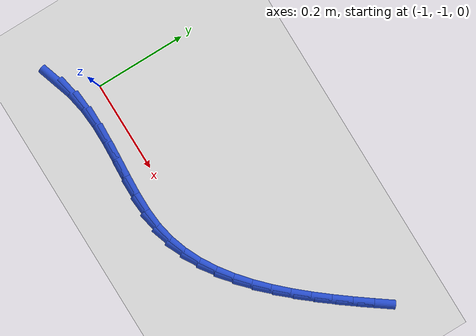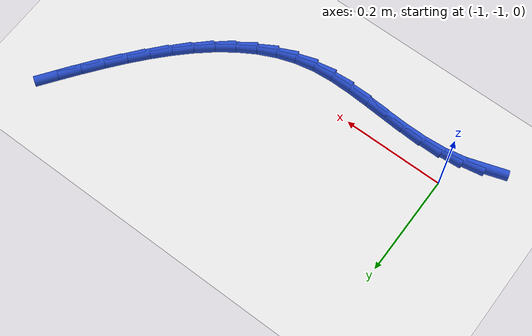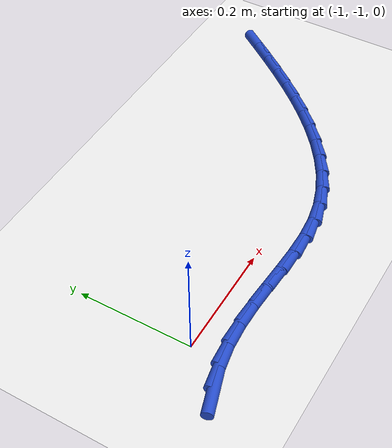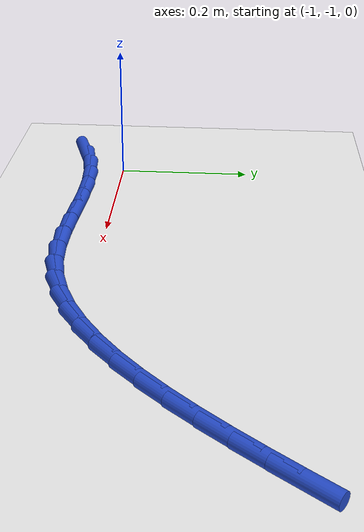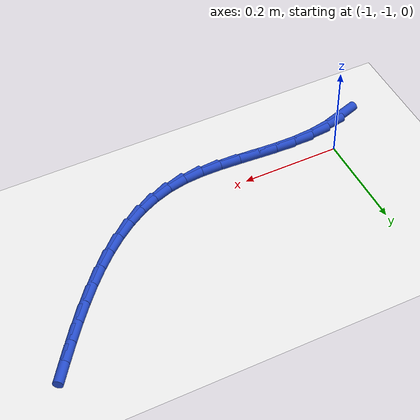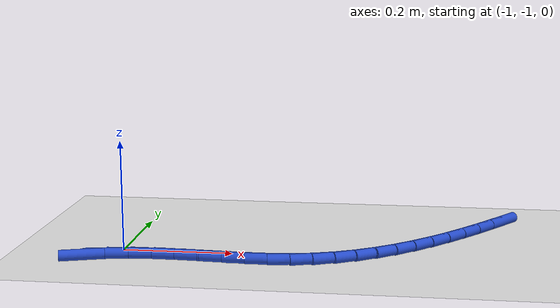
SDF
<sdf version="1.6">
 <world name="default">
  <model name="ground_plane">
   <static>1</static>
   <link name="link">
    <collision name="collision">
     <geometry><plane><normal>0 0 1</normal><size>100 100</size></plane></geometry>
     <surface><friction><ode><mu>100</mu><mu2>50</mu2></ode></friction></surface>
    </collision>
    <visual name="visual">
     <cast_shadows>0</cast_shadows>
     <geometry><plane><normal>0 0 1</normal><size>100 100</size></plane></geometry>
     <material>
      <script><uri>file://media/materials/scripts/gazebo.material</uri><name>Gazebo/WhiteGlow</name></script>
     </material>
    </visual>
   </link>
  </model>
  <model name="line">
   <link name="link_129">
    <pose>-1.056311656815385 -1.0712245395829998 0.01 0 1.57 0.31483644837858815</pose>
    <collision name="collision">
     <geometry><cylinder><radius>0.01</radius><length>0.08</length></cylinder></geometry>
    </collision>
    <visual name="visual">
     <material>
      <script><name>Gazebo/Blue</name><uri>file://media/materials/scripts/gazebo.material</uri></script>
     </material>
     <geometry><cylinder><radius>0.01</radius><length>0.08</length></cylinder></geometry>
    </visual>
   </link>
   <link name="link_130">
    <pose>-1.0161158257465563 -1.058134022115546 0.01 0 1.57 0.18334729055984053</pose>
    <collision name="collision">
     <geometry><cylinder><radius>0.01</radius><length>0.08</length></cylinder></geometry>
    </collision>
    <visual name="visual">
     <material>
      <script><name>Gazebo/Blue</name><uri>file://media/materials/scripts/gazebo.material</uri></script>
     </material>
     <geometry><cylinder><radius>0.01</radius><length>0.08</length></cylinder></geometry>
    </visual>
   </link>
   <link name="link_131">
    <pose>-0.9751224879924567 -1.0505326365673135 0.01 0 1.57 0.07401348739560099</pose>
    <collision name="collision">
     <geometry><cylinder><radius>0.01</radius><length>0.08</length></cylinder></geometry>
    </collision>
    <visual name="visual">
     <material>
      <script><name>Gazebo/Blue</name><uri>file://media/materials/scripts/gazebo.material</uri></script>
     </material>
     <geometry><cylinder><radius>0.01</radius><length>0.08</length></cylinder></geometry>
    </visual>
   </link>
   <link name="link_132">
    <pose>-0.9335790692769242 -1.0474522364076817 0.01 0 1.57 -0.0035225844384561282</pose>
    <collision name="collision">
     <geometry><cylinder><radius>0.01</radius><length>0.08</length></cylinder></geometry>
    </collision>
    <visual name="visual">
     <material>
      <script><name>Gazebo/Blue</name><uri>file://media/materials/scripts/gazebo.material</uri></script>
     </material>
     <geometry><cylinder><radius>0.01</radius><length>0.08</length></cylinder></geometry>
    </visual>
   </link>
   <link name="link_133">
    <pose>-0.8917646722526078 -1.0475995317611866 0.01 0 1.57 -0.0497528941898304</pose>
    <collision name="collision">
     <geometry><cylinder><radius>0.01</radius><length>0.08</length></cylinder></geometry>
    </collision>
    <visual name="visual">
     <material>
      <script><name>Gazebo/Blue</name><uri>file://media/materials/scripts/gazebo.material</uri></script>
     </material>
     <geometry><cylinder><radius>0.01</radius><length>0.08</length></cylinder></geometry>
    </visual>
   </link>
   <link name="link_134">
    <pose>-0.8499583995721564 -1.049681232752363 0.01 0 1.57 -0.06548617349608295</pose>
    <collision name="collision">
     <geometry><cylinder><radius>0.01</radius><length>0.08</length></cylinder></geometry>
    </collision>
    <visual name="visual">
     <material>
      <script><name>Gazebo/Blue</name><uri>file://media/materials/scripts/gazebo.material</uri></script>
     </material>
     <geometry><cylinder><radius>0.01</radius><length>0.08</length></cylinder></geometry>
    </visual>
   </link>
   <link name="link_135">
    <pose>-0.8084393538882196 -1.0524040495057467 0.01 0 1.57 -0.050518769282780325</pose>
    <collision name="collision">
     <geometry><cylinder><radius>0.01</radius><length>0.08</length></cylinder></geometry>
    </collision>
    <visual name="visual">
     <material>
      <script><name>Gazebo/Blue</name><uri>file://media/materials/scripts/gazebo.material</uri></script>
     </material>
     <geometry><cylinder><radius>0.01</radius><length>0.08</length></cylinder></geometry>
    </visual>
   </link>
   <link name="link_136">
    <pose>-0.7674866378534467 -1.0544746921458734 0.01 0 1.57 -0.0031210850820924487</pose>
    <collision name="collision">
     <geometry><cylinder><radius>0.01</radius><length>0.08</length></cylinder></geometry>
    </collision>
    <visual name="visual">
     <material>
      <script><name>Gazebo/Blue</name><uri>file://media/materials/scripts/gazebo.material</uri></script>
     </material>
     <geometry><cylinder><radius>0.01</radius><length>0.08</length></cylinder></geometry>
    </visual>
   </link>
   <link name="link_137">
    <pose>-0.7273793541204883 -1.0545998707972781 0.01 0 1.57 0.07970139908108528</pose>
    <collision name="collision">
     <geometry><cylinder><radius>0.01</radius><length>0.08</length></cylinder></geometry>
    </collision>
    <visual name="visual">
     <material>
      <script><name>Gazebo/Blue</name><uri>file://media/materials/scripts/gazebo.material</uri></script>
     </material>
     <geometry><cylinder><radius>0.01</radius><length>0.08</length></cylinder></geometry>
    </visual>
   </link>
   <link name="link_138">
    <pose>-0.688396605341993 -1.0514862955844966 0.01 0 1.57 0.1980903167963204</pose>
    <collision name="collision">
     <geometry><cylinder><radius>0.01</radius><length>0.08</length></cylinder></geometry>
    </collision>
    <visual name="visual">
     <material>
      <script><name>Gazebo/Blue</name><uri>file://media/materials/scripts/gazebo.material</uri></script>
     </material>
     <geometry><cylinder><radius>0.01</radius><length>0.08</length></cylinder></geometry>
    </visual>
   </link>
   <link name="link_139">
    <pose>-0.650796539880458 -1.0439391108893532 0.01 0 1.57 0.32448597373743054</pose>
    <collision name="collision">
     <geometry><cylinder><radius>0.01</radius><length>0.08</length></cylinder></geometry>
    </collision>
    <visual name="visual">
     <material>
      <script><name>Gazebo/Blue</name><uri>file://media/materials/scripts/gazebo.material</uri></script>
     </material>
     <geometry><cylinder><radius>0.01</radius><length>0.08</length></cylinder></geometry>
    </visual>
   </link>
   <link name="link_140">
    <pose>-0.6146227933419425 -1.0317711499108657 0.01 0 1.57 0.4397228596198031</pose>
    <collision name="collision">
     <geometry><cylinder><radius>0.01</radius><length>0.08</length></cylinder></geometry>
    </collision>
    <visual name="visual">
     <material>
      <script><name>Gazebo/Blue</name><uri>file://media/materials/scripts/gazebo.material</uri></script>
     </material>
     <geometry><cylinder><radius>0.01</radius><length>0.08</length></cylinder></geometry>
    </visual>
   </link>
   <link name="link_141">
    <pose>-0.5797932697329785 -1.0153858789130263 0.01 0 1.57 0.5415191113104275</pose>
    <collision name="collision">
     <geometry><cylinder><radius>0.01</radius><length>0.08</length></cylinder></geometry>
    </collision>
    <visual name="visual">
     <material>
      <script><name>Gazebo/Blue</name><uri>file://media/materials/scripts/gazebo.material</uri></script>
     </material>
     <geometry><cylinder><radius>0.01</radius><length>0.08</length></cylinder></geometry>
    </visual>
   </link>
   <link name="link_142">
    <pose>-0.5462242794741247 -0.9951942501424369 0.01 0 1.57 0.6293838084588937</pose>
    <collision name="collision">
     <geometry><cylinder><radius>0.01</radius><length>0.08</length></cylinder></geometry>
    </collision>
    <visual name="visual">
     <material>
      <script><name>Gazebo/Blue</name><uri>file://media/materials/scripts/gazebo.material</uri></script>
     </material>
     <geometry><cylinder><radius>0.01</radius><length>0.08</length></cylinder></geometry>
    </visual>
   </link>
   <link name="link_143">
    <pose>-0.5138321329859415 -0.9716072158457018 0.01 0 1.57 0.7038880325161561</pose>
    <collision name="collision">
     <geometry><cylinder><radius>0.01</radius><length>0.08</length></cylinder></geometry>
    </collision>
    <visual name="visual">
     <material>
      <script><name>Gazebo/Blue</name><uri>file://media/materials/scripts/gazebo.material</uri></script>
     </material>
     <geometry><cylinder><radius>0.01</radius><length>0.08</length></cylinder></geometry>
    </visual>
   </link>
   <link name="link_144">
    <pose>-0.4825331406889877 -0.9450357282694225 0.01 0 1.57 0.7661433986683811</pose>
    <collision name="collision">
     <geometry><cylinder><radius>0.01</radius><length>0.08</length></cylinder></geometry>
    </collision>
    <visual name="visual">
     <material>
      <script><name>Gazebo/Blue</name><uri>file://media/materials/scripts/gazebo.material</uri></script>
     </material>
     <geometry><cylinder><radius>0.01</radius><length>0.08</length></cylinder></geometry>
    </visual>
   </link>
   <link name="link_145">
    <pose>-0.4522436130038221 -0.915890739660202 0.01 0 1.57 0.8174251748001976</pose>
    <collision name="collision">
     <geometry><cylinder><radius>0.01</radius><length>0.08</length></cylinder></geometry>
    </collision>
    <visual name="visual">
     <material>
      <script><name>Gazebo/Blue</name><uri>file://media/materials/scripts/gazebo.material</uri></script>
     </material>
     <geometry><cylinder><radius>0.01</radius><length>0.08</length></cylinder></geometry>
    </visual>
   </link>
   <link name="link_146">
    <pose>-0.4228798603510039 -0.8845832022646427 0.01 0 1.57 0.8589483882364315</pose>
    <collision name="collision">
     <geometry><cylinder><radius>0.01</radius><length>0.08</length></cylinder></geometry>
    </collision>
    <visual name="visual">
     <material>
      <script><name>Gazebo/Blue</name><uri>file://media/materials/scripts/gazebo.material</uri></script>
     </material>
     <geometry><cylinder><radius>0.01</radius><length>0.08</length></cylinder></geometry>
    </visual>
   </link>
   <link name="link_147">
    <pose>-0.394358193151092 -0.8515240683293474 0.01 0 1.57 0.8917549863543344</pose>
    <collision name="collision">
     <geometry><cylinder><radius>0.01</radius><length>0.08</length></cylinder></geometry>
    </collision>
    <visual name="visual">
     <material>
      <script><name>Gazebo/Blue</name><uri>file://media/materials/scripts/gazebo.material</uri></script>
     </material>
     <geometry><cylinder><radius>0.01</radius><length>0.08</length></cylinder></geometry>
    </visual>
   </link>
   <link name="link_148">
    <pose>-0.36659492182464654 -0.8171242901009194 0.01 0 1.57 0.9166665801830453</pose>
    <collision name="collision">
     <geometry><cylinder><radius>0.01</radius><length>0.08</length></cylinder></geometry>
    </collision>
    <visual name="visual">
     <material>
      <script><name>Gazebo/Blue</name><uri>file://media/materials/scripts/gazebo.material</uri></script>
     </material>
     <geometry><cylinder><radius>0.01</radius><length>0.08</length></cylinder></geometry>
    </visual>
   </link>
   <link name="link_149">
    <pose>-0.33950635679222596 -0.7817948198259609 0.01 0 1.57 0.9342692555900797</pose>
    <collision name="collision">
     <geometry><cylinder><radius>0.01</radius><length>0.08</length></cylinder></geometry>
    </collision>
    <visual name="visual">
     <material>
      <script><name>Gazebo/Blue</name><uri>file://media/materials/scripts/gazebo.material</uri></script>
     </material>
     <geometry><cylinder><radius>0.01</radius><length>0.08</length></cylinder></geometry>
    </visual>
   </link>
   <link name="link_150">
    <pose>-0.3130088084743894 -0.7459466097510741 0.01 0 1.57 0.9449092768045387</pose>
    <collision name="collision">
     <geometry><cylinder><radius>0.01</radius><length>0.08</length></cylinder></geometry>
    </collision>
    <visual name="visual">
     <material>
      <script><name>Gazebo/Blue</name><uri>file://media/materials/scripts/gazebo.material</uri></script>
     </material>
     <geometry><cylinder><radius>0.01</radius><length>0.08</length></cylinder></geometry>
    </visual>
   </link>
  </model>
 </world>
</sdf>
